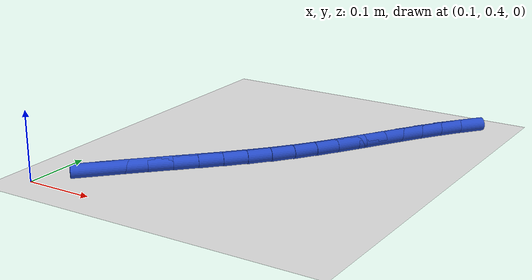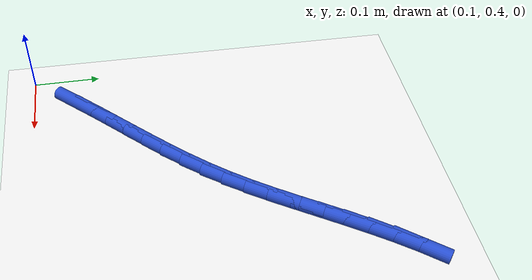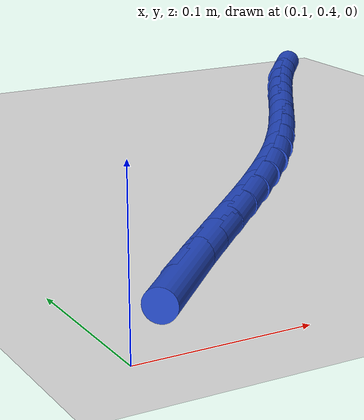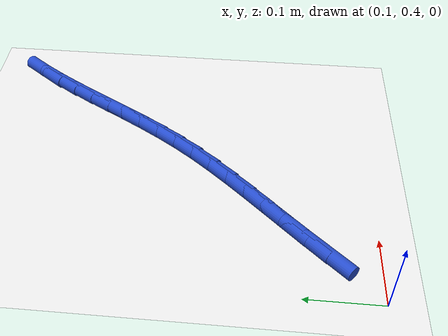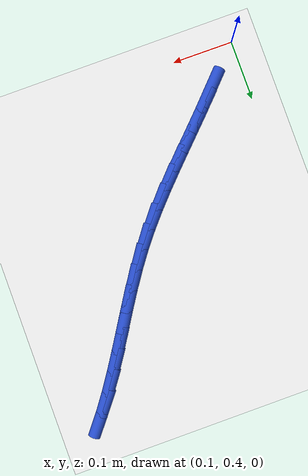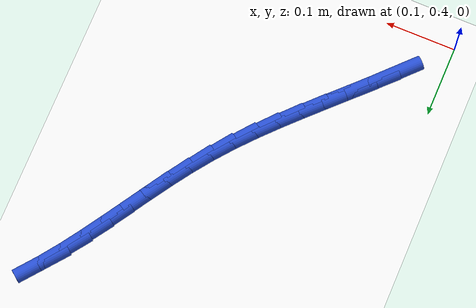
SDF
<sdf version="1.6">
 <world name="default">
  <model name="ground_plane">
   <static>1</static>
   <link name="link">
    <collision name="collision">
     <geometry><plane><normal>0 0 1</normal><size>100 100</size></plane></geometry>
     <surface><friction><ode><mu>100</mu><mu2>50</mu2></ode></friction></surface>
    </collision>
    <visual name="visual">
     <cast_shadows>0</cast_shadows>
     <geometry><plane><normal>0 0 1</normal><size>100 100</size></plane></geometry>
     <material>
      <script><uri>file://media/materials/scripts/gazebo.material</uri><name>Gazebo/WhiteGlow</name></script>
     </material>
    </visual>
   </link>
  </model>
  <model name="line">
   <link name="link_15">
    <pose>0.16293873672577916 0.466999730524527 0.01 0 1.57 0.8087953530941996</pose>
    <collision name="collision">
     <geometry><cylinder><radius>0.01</radius><length>0.08</length></cylinder></geometry>
    </collision>
    <visual name="visual">
     <material>
      <script><name>Gazebo/Blue</name><uri>file://media/materials/scripts/gazebo.material</uri></script>
     </material>
     <geometry><cylinder><radius>0.01</radius><length>0.08</length></cylinder></geometry>
    </visual>
   </link>
   <link name="link_16">
    <pose>0.18677547226338106 0.4919788278246356 0.01 0 1.57 0.7938475137856855</pose>
    <collision name="collision">
     <geometry><cylinder><radius>0.01</radius><length>0.08</length></cylinder></geometry>
    </collision>
    <visual name="visual">
     <material>
      <script><name>Gazebo/Blue</name><uri>file://media/materials/scripts/gazebo.material</uri></script>
     </material>
     <geometry><cylinder><radius>0.01</radius><length>0.08</length></cylinder></geometry>
    </visual>
   </link>
   <link name="link_17">
    <pose>0.21111458066504654 0.5167327503173987 0.01 0 1.57 0.7880563527090264</pose>
    <collision name="collision">
     <geometry><cylinder><radius>0.01</radius><length>0.08</length></cylinder></geometry>
    </collision>
    <visual name="visual">
     <material>
      <script><name>Gazebo/Blue</name><uri>file://media/materials/scripts/gazebo.material</uri></script>
     </material>
     <geometry><cylinder><radius>0.01</radius><length>0.08</length></cylinder></geometry>
    </visual>
   </link>
   <link name="link_18">
    <pose>0.23567152430008248 0.5414205962339891 0.01 0 1.57 0.7912966091688998</pose>
    <collision name="collision">
     <geometry><cylinder><radius>0.01</radius><length>0.08</length></cylinder></geometry>
    </collision>
    <visual name="visual">
     <material>
      <script><name>Gazebo/Blue</name><uri>file://media/materials/scripts/gazebo.material</uri></script>
     </material>
     <geometry><cylinder><radius>0.01</radius><length>0.08</length></cylinder></geometry>
    </visual>
   </link>
   <link name="link_19">
    <pose>0.26016176553779596 0.5662014638055791 0.01 0 1.57 0.8035769638067028</pose>
    <collision name="collision">
     <geometry><cylinder><radius>0.01</radius><length>0.08</length></cylinder></geometry>
    </collision>
    <visual name="visual">
     <material>
      <script><name>Gazebo/Blue</name><uri>file://media/materials/scripts/gazebo.material</uri></script>
     </material>
     <geometry><cylinder><radius>0.01</radius><length>0.08</length></cylinder></geometry>
    </visual>
   </link>
   <link name="link_20">
    <pose>0.2843007667474938 0.5912344512633414 0.01 0 1.57 0.8250318200943751</pose>
    <collision name="collision">
     <geometry><cylinder><radius>0.01</radius><length>0.08</length></cylinder></geometry>
    </collision>
    <visual name="visual">
     <material>
      <script><name>Gazebo/Blue</name><uri>file://media/materials/scripts/gazebo.material</uri></script>
     </material>
     <geometry><cylinder><radius>0.01</radius><length>0.08</length></cylinder></geometry>
    </visual>
   </link>
   <link name="link_21">
    <pose>0.30780399029848293 0.6166786568384481 0.01 0 1.57 0.8558942179228385</pose>
    <collision name="collision">
     <geometry><cylinder><radius>0.01</radius><length>0.08</length></cylinder></geometry>
    </collision>
    <visual name="visual">
     <material>
      <script><name>Gazebo/Blue</name><uri>file://media/materials/scripts/gazebo.material</uri></script>
     </material>
     <geometry><cylinder><radius>0.01</radius><length>0.08</length></cylinder></geometry>
    </visual>
   </link>
   <link name="link_22">
    <pose>0.33038689856007036 0.6426931787620722 0.01 0 1.57 0.8964234375971111</pose>
    <collision name="collision">
     <geometry><cylinder><radius>0.01</radius><length>0.08</length></cylinder></geometry>
    </collision>
    <visual name="visual">
     <material>
      <script><name>Gazebo/Blue</name><uri>file://media/materials/scripts/gazebo.material</uri></script>
     </material>
     <geometry><cylinder><radius>0.01</radius><length>0.08</length></cylinder></geometry>
    </visual>
   </link>
   <link name="link_23">
    <pose>0.3517656094628502 0.669436739701347 0.01 0 1.57 0.9411124589400269</pose>
    <collision name="collision">
     <geometry><cylinder><radius>0.01</radius><length>0.08</length></cylinder></geometry>
    </collision>
    <visual name="visual">
     <material>
      <script><name>Gazebo/Blue</name><uri>file://media/materials/scripts/gazebo.material</uri></script>
     </material>
     <geometry><cylinder><radius>0.01</radius><length>0.08</length></cylinder></geometry>
    </visual>
   </link>
   <link name="link_24">
    <pose>0.37182725326284466 0.6969700911940012 0.01 0 1.57 0.97642816466721</pose>
    <collision name="collision">
     <geometry><cylinder><radius>0.01</radius><length>0.08</length></cylinder></geometry>
    </collision>
    <visual name="visual">
     <material>
      <script><name>Gazebo/Blue</name><uri>file://media/materials/scripts/gazebo.material</uri></script>
     </material>
     <geometry><cylinder><radius>0.01</radius><length>0.08</length></cylinder></geometry>
    </visual>
   </link>
   <link name="link_25">
    <pose>0.39085759008717813 0.7251256139946143 0.01 0 1.57 1.000197946043899</pose>
    <collision name="collision">
     <geometry><cylinder><radius>0.01</radius><length>0.08</length></cylinder></geometry>
    </collision>
    <visual name="visual">
     <material>
      <script><name>Gazebo/Blue</name><uri>file://media/materials/scripts/gazebo.material</uri></script>
     </material>
     <geometry><cylinder><radius>0.01</radius><length>0.08</length></cylinder></geometry>
    </visual>
   </link>
   <link name="link_26">
    <pose>0.40919906751452423 0.7537032132239931 0.01 0 1.57 1.0123136852721775</pose>
    <collision name="collision">
     <geometry><cylinder><radius>0.01</radius><length>0.08</length></cylinder></geometry>
    </collision>
    <visual name="visual">
     <material>
      <script><name>Gazebo/Blue</name><uri>file://media/materials/scripts/gazebo.material</uri></script>
     </material>
     <geometry><cylinder><radius>0.01</radius><length>0.08</length></cylinder></geometry>
    </visual>
   </link>
   <link name="link_27">
    <pose>0.4271941331235565 0.7825027940029446 0.01 0 1.57 1.0127539883543581</pose>
    <collision name="collision">
     <geometry><cylinder><radius>0.01</radius><length>0.08</length></cylinder></geometry>
    </collision>
    <visual name="visual">
     <material>
      <script><name>Gazebo/Blue</name><uri>file://media/materials/scripts/gazebo.material</uri></script>
     </material>
     <geometry><cylinder><radius>0.01</radius><length>0.08</length></cylinder></geometry>
    </visual>
   </link>
   <link name="link_28">
    <pose>0.44518523449294795 0.8113242614522748 0.01 0 1.57 1.0015351789754492</pose>
    <collision name="collision">
     <geometry><cylinder><radius>0.01</radius><length>0.08</length></cylinder></geometry>
    </collision>
    <visual name="visual">
     <material>
      <script><name>Gazebo/Blue</name><uri>file://media/materials/scripts/gazebo.material</uri></script>
     </material>
     <geometry><cylinder><radius>0.01</radius><length>0.08</length></cylinder></geometry>
    </visual>
   </link>
   <link name="link_29">
    <pose>0.4635148192013722 0.8399675206927902 0.01 0 1.57 0.9787093027036249</pose>
    <collision name="collision">
     <geometry><cylinder><radius>0.01</radius><length>0.08</length></cylinder></geometry>
    </collision>
    <visual name="visual">
     <material>
      <script><name>Gazebo/Blue</name><uri>file://media/materials/scripts/gazebo.material</uri></script>
     </material>
     <geometry><cylinder><radius>0.01</radius><length>0.08</length></cylinder></geometry>
    </visual>
   </link>
   <link name="link_30">
    <pose>0.482525334827503 0.8682324768452984 0.01 0 1.57 0.944408757813209</pose>
    <collision name="collision">
     <geometry><cylinder><radius>0.01</radius><length>0.08</length></cylinder></geometry>
    </collision>
    <visual name="visual">
     <material>
      <script><name>Gazebo/Blue</name><uri>file://media/materials/scripts/gazebo.material</uri></script>
     </material>
     <geometry><cylinder><radius>0.01</radius><length>0.08</length></cylinder></geometry>
    </visual>
   </link>
   <link name="link_31">
    <pose>0.5025592289500133 0.895919035030605 0.01 0 1.57 0.8989338296471515</pose>
    <collision name="collision">
     <geometry><cylinder><radius>0.01</radius><length>0.08</length></cylinder></geometry>
    </collision>
    <visual name="visual">
     <material>
      <script><name>Gazebo/Blue</name><uri>file://media/materials/scripts/gazebo.material</uri></script>
     </material>
     <geometry><cylinder><radius>0.01</radius><length>0.08</length></cylinder></geometry>
    </visual>
   </link>
  </model>
 </world>
</sdf>
